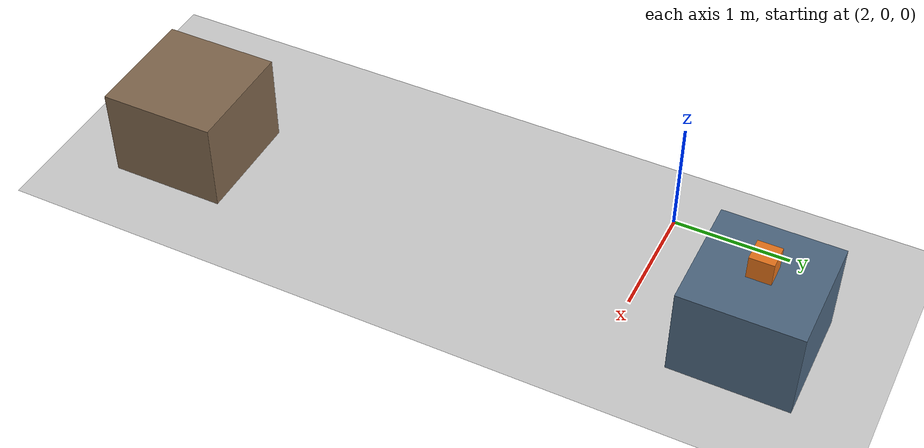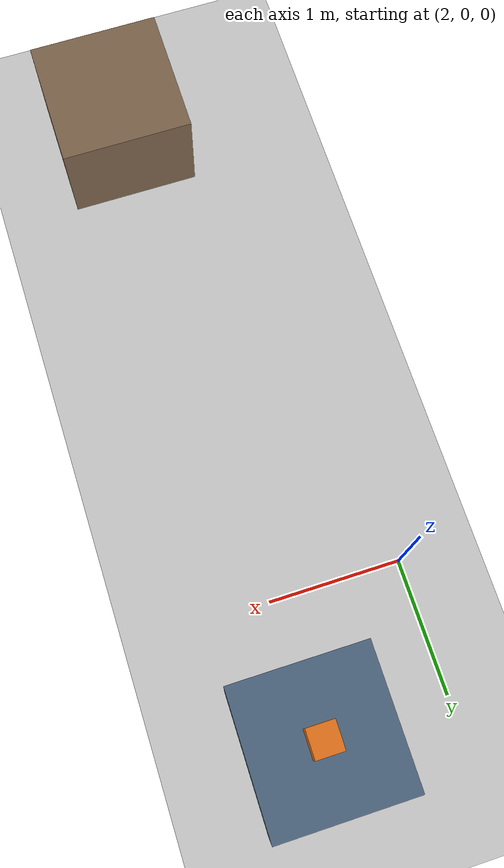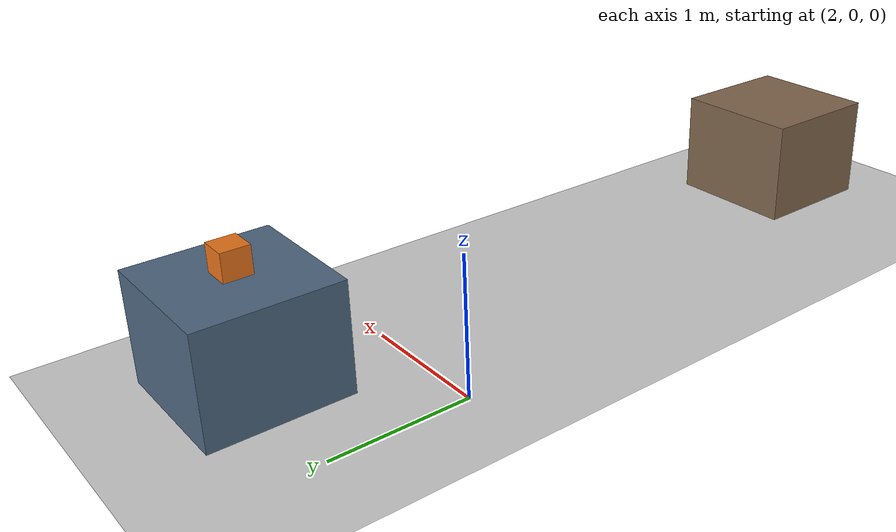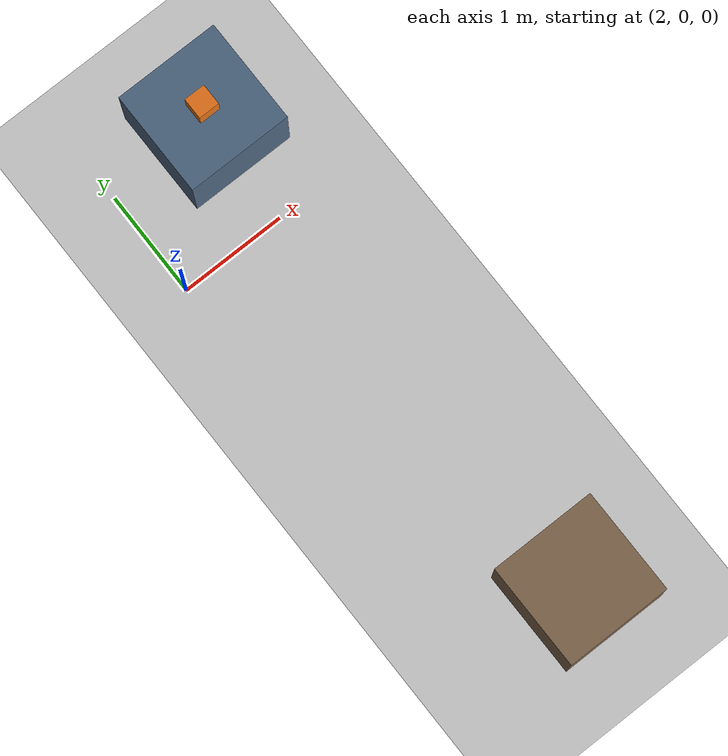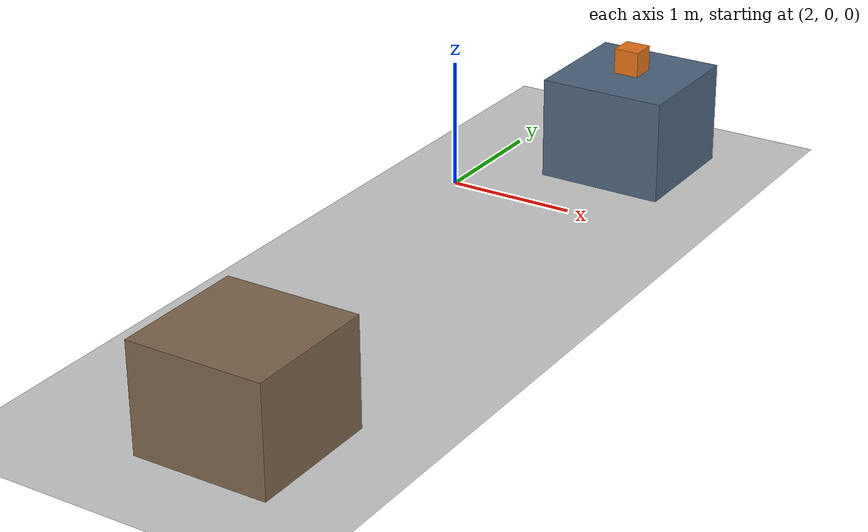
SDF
<?xml version="1.0"?>
<sdf version="1.8">
  <world name="ax_arm_test">
    <plugin filename="gz-sim-physics-system" name="gz::sim::systems::Physics"/>
    <plugin filename="gz-sim-user-commands-system" name="gz::sim::systems::UserCommands"/>
    <plugin filename="gz-sim-scene-broadcaster-system" name="gz::sim::systems::SceneBroadcaster"/>
    <plugin filename="gz-sim-sensors-system" name="gz::sim::systems::Sensors">
      <render_engine>ogre2</render_engine>
    </plugin>
    <plugin filename="gz-sim-imu-system" name="gz::sim::systems::Imu"/>
    <plugin filename="gz-sim-contact-system" name="gz::sim::systems::Contact"/>
    <physics name="default_physics" type="ode">
      <max_step_size>0.001</max_step_size>
      <real_time_factor>1.0</real_time_factor>
      <real_time_update_rate>1000</real_time_update_rate>
    </physics>

    <light name="sun" type="directional">
      <cast_shadows>true</cast_shadows>
      <pose>0 0 10 0 0 0</pose>
      <diffuse>0.8 0.8 0.8 1</diffuse>
      <specular>0.2 0.2 0.2 1</specular>
      <direction>-0.5 0.1 -0.9</direction>
    </light>

    <model name="station_src">
      <static>true</static>
      <pose>3 1 0.4 0 0 0</pose>
      <link name="table">
        <collision name="table_collision"><geometry><box><size>1.0 1.0 0.8</size></box></geometry></collision>
        <visual name="table_visual"><geometry><box><size>1.0 1.0 0.8</size></box></geometry><material><diffuse>0.3 0.4 0.5 1</diffuse></material></visual>
      </link>
    </model>
    <model name="station_dst">
      <static>true</static>
      <pose>3 -4 0.4 0 0 0</pose>
      <link name="table">
        <collision name="table_collision"><geometry><box><size>1.0 1.0 0.8</size></box></geometry></collision>
        <visual name="table_visual"><geometry><box><size>1.0 1.0 0.8</size></box></geometry><material><diffuse>0.5 0.4 0.3 1</diffuse></material></visual>
      </link>
    </model>
    <model name="test_box">
      <pose>3 1 0.91 0 0 0</pose>
      <link name="box">
        <inertial><mass>0.5</mass><inertia><ixx>0.003333333333</ixx><iyy>0.003333333333</iyy><izz>0.003333333333</izz></inertia></inertial>
        <collision name="box_collision"><geometry><box><size>0.2 0.2 0.2</size></box></geometry></collision>
        <visual name="box_visual"><geometry><box><size>0.2 0.2 0.2</size></box></geometry><material><diffuse>0.9 0.45 0.1 1</diffuse></material></visual>
      </link>
    </model>
    <model name="ground_plane">
      <static>true</static>
      <link name="link">
        <collision name="collision">
          <geometry>
            <plane><normal>0 0 1</normal><size>20 20</size></plane>
          </geometry>
        </collision>
        <visual name="visual">
          <geometry>
            <plane><normal>0 0 1</normal><size>20 20</size></plane>
          </geometry>
          <material>
            <diffuse>0.8 0.8 0.8 1</diffuse>
          </material>
        </visual>
      </link>
    </model>
  </world>
</sdf>
